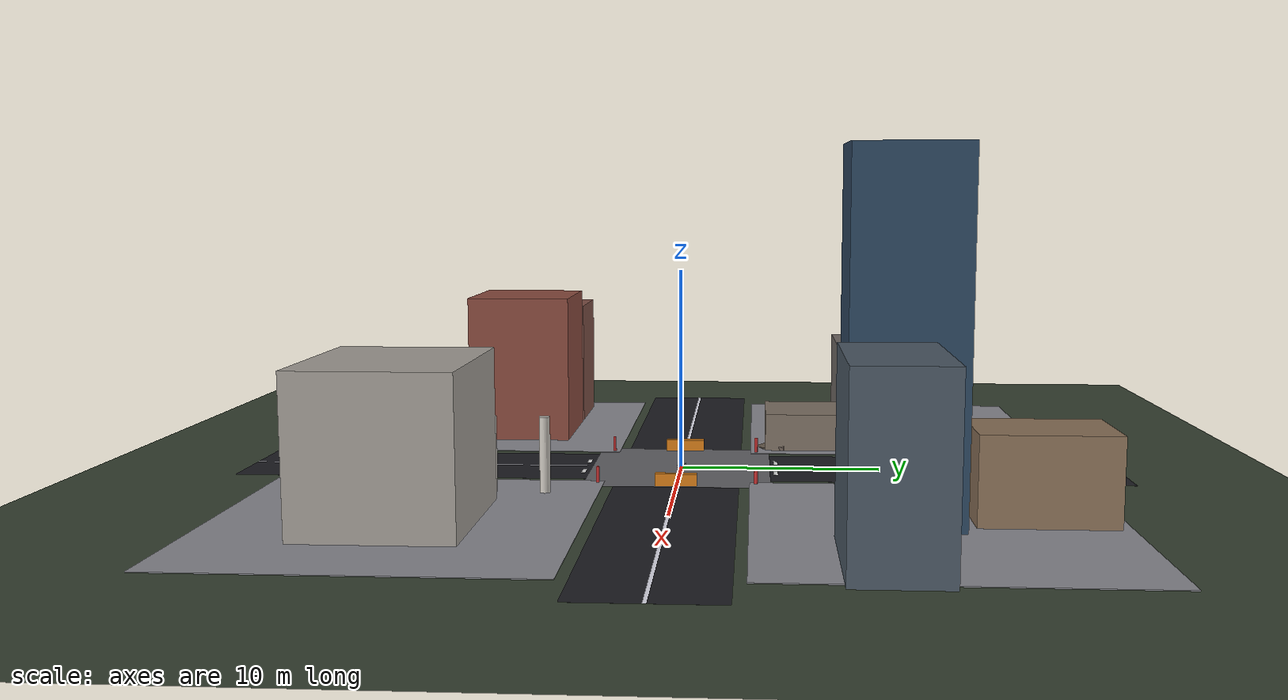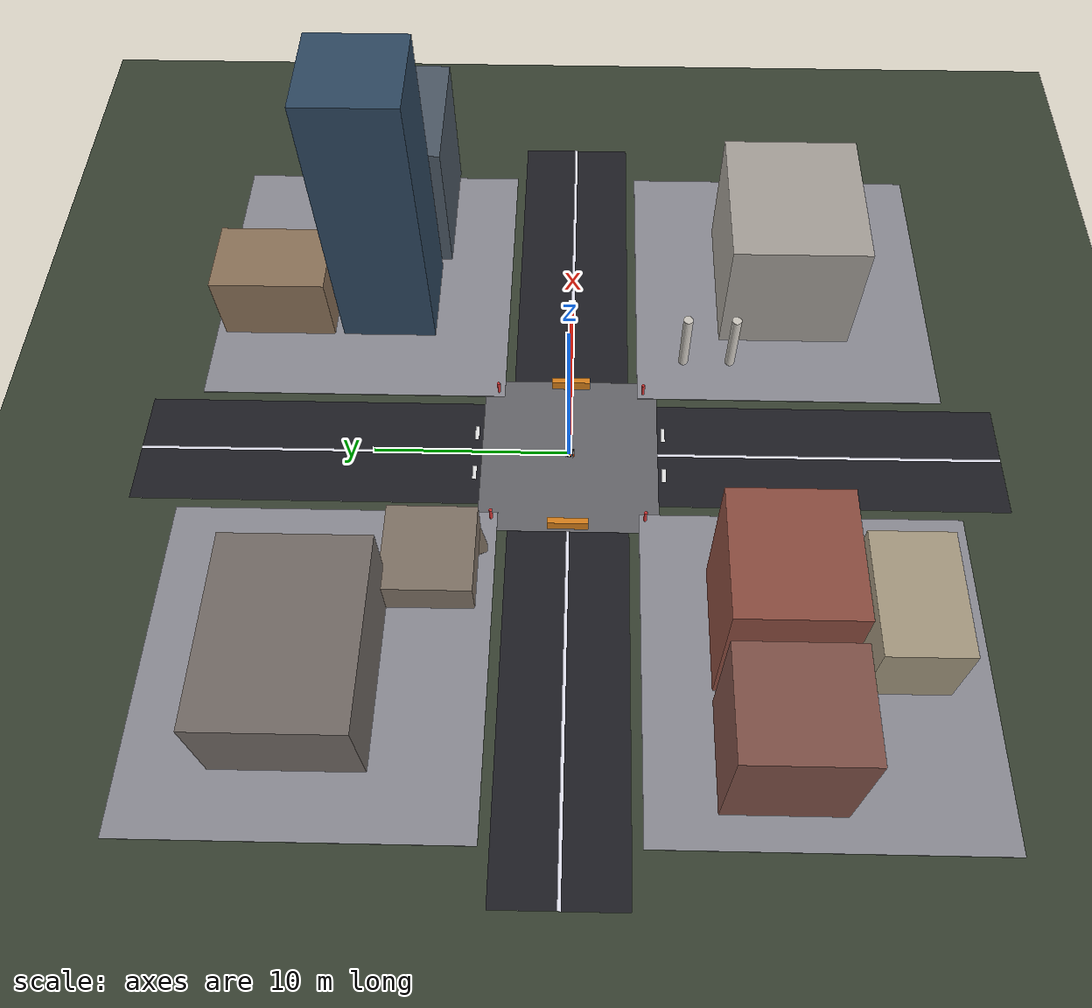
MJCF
<mujoco model="city_square_world">
    <option timestep="0.002" gravity="0 0 -9.81"/>

    <asset>
        <texture type="skybox" builtin="gradient" rgb1="0.4 0.6 0.8" rgb2="0.8 0.9 1.0" width="512" height="512"/>
    </asset>

    <default>
        <geom friction="2.0 0.5 0.5" solref="0.02 1" solimp="0.9 0.95 0.001"/>
    </default>

    <worldbody>
        <!-- Directional Daylight & Ambient Lighting -->
        <light name="sun" pos="10 10 20" dir="-0.4 -0.4 -1" castshadow="true" diffuse="0.85 0.85 0.9" ambient="0.35 0.35 0.4"/>
        <light name="fill_light" pos="-15 -15 15" dir="0.5 0.5 -1" diffuse="0.3 0.3 0.35"/>

        <!-- Base Terrain Plane (Grass / Outskirts) -->
        <geom name="ground_plane" type="plane" size="30 30 0.1" rgba="0.22 0.26 0.2 1" friction="3.0 0.5 0.5"/>

        <!-- ROAD NETWORK & PAVEMENT (Z = 0.001 to 0.005)               -->
        <!-- Main North-South Avenue -->
        <geom name="road_ns" type="box" size="3.0 22.0 0.001" pos="0 0 0.001" rgba="0.12 0.12 0.14 1"/>
        <!-- Main East-West Street -->
        <geom name="road_ew" type="box" size="22.0 3.0 0.001" pos="0 0 0.001" rgba="0.12 0.12 0.14 1"/>

        <!-- Central Plaza Ground Pad -->
        <geom name="central_plaza" type="box" size="4.5 4.5 0.003" pos="0 0 0.003" rgba="0.4 0.4 0.42 1"/>

        <!-- Road Markings (White Dashed Lines & Stop Lines) -->
        <geom name="line_n" type="box" size="0.08 12.0 0.002" pos="0 10.0 0.002" rgba="0.9 0.9 0.95 1"/>
        <geom name="line_s" type="box" size="0.08 12.0 0.002" pos="0 -10.0 0.002" rgba="0.9 0.9 0.95 1"/>
        <geom name="line_e" type="box" size="12.0 0.08 0.002" pos="10.0 0 0.002" rgba="0.9 0.9 0.95 1"/>
        <geom name="line_w" type="box" size="12.0 0.08 0.002" pos="-10.0 0 0.002" rgba="0.9 0.9 0.95 1"/>

        <!-- Crosswalk Stripes -->
        <geom name="cw_n_1" type="box" size="0.4 0.1 0.003" pos="1.2 4.8 0.003" rgba="0.9 0.9 0.9 1"/>
        <geom name="cw_n_2" type="box" size="0.4 0.1 0.003" pos="-1.2 4.8 0.003" rgba="0.9 0.9 0.9 1"/>
        <geom name="cw_s_1" type="box" size="0.4 0.1 0.003" pos="1.2 -4.8 0.003" rgba="0.9 0.9 0.9 1"/>
        <geom name="cw_s_2" type="box" size="0.4 0.1 0.003" pos="-1.2 -4.8 0.003" rgba="0.9 0.9 0.9 1"/>

        <!-- SIDEWALKS (Elevated Z=0.02 for Tracked Curb Climbing) -->
        <geom name="sw_ne" type="box" size="8.0 8.0 0.02" pos="11.5 11.5 0.02" rgba="0.55 0.55 0.58 1"/>
        <geom name="sw_nw" type="box" size="8.0 8.0 0.02" pos="-11.5 11.5 0.02" rgba="0.55 0.55 0.58 1"/>
        <geom name="sw_sw" type="box" size="8.0 8.0 0.02" pos="-11.5 -11.5 0.02" rgba="0.55 0.55 0.58 1"/>
        <geom name="sw_se" type="box" size="8.0 8.0 0.02" pos="11.5 -11.5 0.02" rgba="0.55 0.55 0.58 1"/>

        <!-- BUILDINGS & ARCHITECTURE                                  -->
        <!-- NORTH-EAST QUADRANT (Commercial & High-Rise Tower) -->
        <geom name="bld_ne_tower" type="box" size="2.5 2.5 8.0" pos="10.0 10.0 8.0" rgba="0.18 0.28 0.38 1"/>
        <geom name="bld_ne_office" type="box" size="3.5 2.0 4.0" pos="16.5 9.0 4.0" rgba="0.3 0.35 0.4 1"/>
        <geom name="bld_ne_store" type="box" size="2.0 3.0 2.0" pos="9.5 16.0 2.0" rgba="0.55 0.45 0.35 1"/>

        <!-- NORTH-WEST QUADRANT (Industrial Zone & USAR Rubble Site) -->
        <geom name="bld_nw_warehouse" type="box" size="4.5 3.5 2.5" pos="-12.0 12.0 2.5" rgba="0.45 0.42 0.4 1"/>
        <geom name="bld_nw_collapsed" type="box" size="2.2 2.2 1.0" pos="-6.5 6.5 1.0" rgba="0.5 0.45 0.4 1"/>

        <!-- Rubble / Debris Field (Urban Search & Rescue Mobility Test) -->
        <geom name="rubble_ramp" type="box" size="0.7 0.5 0.12" pos="-5.2 4.5 0.08" euler="15 0 25" rgba="0.4 0.35 0.3 1"/>
        <geom name="rubble_block1" type="box" size="0.25 0.2 0.15" pos="-4.5 5.2 0.15" euler="5 12 -30" rgba="0.48 0.42 0.38 1"/>
        <geom name="rubble_block2" type="box" size="0.3 0.25 0.18" pos="-5.5 5.8 0.18" euler="-10 15 40" rgba="0.35 0.32 0.3 1"/>

        <!-- SOUTH-WEST QUADRANT (Residential Blocks & Narrow Alleyways) -->
        <geom name="bld_sw_apt1" type="box" size="3.0 2.8 4.0" pos="-9.5 -9.5 4.0" rgba="0.55 0.3 0.25 1"/>
        <geom name="bld_sw_apt2" type="box" size="2.5 2.8 3.5" pos="-15.5 -9.5 3.5" rgba="0.5 0.32 0.28 1"/>
        <geom name="bld_sw_retail" type="box" size="3.0 2.0 2.2" pos="-9.5 -15.5 2.2" rgba="0.65 0.6 0.5 1"/>

        <!-- SOUTH-EAST QUADRANT (Civic Center & Plaza Wall) -->
        <geom name="bld_se_civic" type="box" size="4.0 3.5 3.5" pos="11.5 -11.5 3.5" rgba="0.65 0.63 0.6 1"/>
        <geom name="bld_se_column1" type="cylinder" size="0.25 1.8" pos="6.0 -6.0 1.8" rgba="0.8 0.78 0.75 1"/>
        <geom name="bld_se_column2" type="cylinder" size="0.25 1.8" pos="6.0 -8.5 1.8" rgba="0.8 0.78 0.75 1"/>

        <!-- INFRASTRUCTURE & STREET PROPS                             -->
        <!-- Plaza Perimeter Traffic Bollards -->
        <geom name="bollard_ne" type="cylinder" size="0.08 0.4" pos="3.8 3.8 0.4" rgba="0.8 0.2 0.2 1"/>
        <geom name="bollard_nw" type="cylinder" size="0.08 0.4" pos="-3.8 3.8 0.4" rgba="0.8 0.2 0.2 1"/>
        <geom name="bollard_sw" type="cylinder" size="0.08 0.4" pos="-3.8 -3.8 0.4" rgba="0.8 0.2 0.2 1"/>
        <geom name="bollard_se" type="cylinder" size="0.08 0.4" pos="3.8 -3.8 0.4" rgba="0.8 0.2 0.2 1"/>

        <!-- Concrete Jersey Barriers -->
        <geom name="barrier_east" type="box" size="0.15 1.0 0.3" pos="4.2 0 0.3" rgba="0.85 0.5 0.1 1"/>
        <geom name="barrier_west" type="box" size="0.15 1.0 0.3" pos="-4.2 0 0.3" rgba="0.85 0.5 0.1 1"/>
    </worldbody>

    <!-- Include robot definition -->
    <include file="robot.xml"/>
</mujoco>

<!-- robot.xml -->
<mujoco model="invertible_tracked_robot">
    <compiler angle="degree"/>

    <!-- Soft, balanced ambient light -->
    <visual>
        <headlight diffuse="0.4 0.4 0.4" ambient="0.5 0.5 0.5" specular="0.1 0.1 0.1"/>
    </visual>

    <default>
        <geom rgba="0.2 0.2 0.25 1" friction="1.5 0.3 0.1" solref="0.02 1" solimp="0.9 0.95 0.001"/>
        <joint type="hinge" damping="1.5" armature="0.10"/>
        <velocity kv="40" forcerange="-160 160"/>
    </default>

    <worldbody>
        <!-- Directional light without duplicate name attribute -->
        <light pos="1 1 4" dir="-0.2 -0.2 -1" diffuse="0.6 0.6 0.6" specular="0.2 0.2 0.2" castshadow="true"/>

        <body name="torso" pos="0 0 0.085">
            <freejoint name="root"/>

            <!-- Sensors & Camera Mount -->
            <camera name="front_cam" pos="0.22 0 0.0" xyaxes="0 -1 0 0 0 1"/>
            <site name="imu_site" pos="0 0 0"/>

            <!-- Lidar -->
            <site  name="lidar_0"    pos="0 0 0.05"   euler="0 90 0" />
            <site  name="lidar_45"   pos="0 0 0.05"   euler="0 90 45" />
            <site  name="lidar_90"   pos="0 0 0.05"   euler="0 90 90" />
            <site  name="lidar_135"  pos="0 0 0.05"   euler="0 90 135" />
            <site  name="lidar_180"  pos="0 0 0.05"   euler="0 90 180" />
            <site  name="lidar_225"  pos="0 0 0.05"   euler="0 90 225" />
            <site  name="lidar_270"  pos="0 0 0.05"   euler="0 90 270" />
            <site  name="lidar_315"  pos="0 0 0.05"   euler="0 90 315" />

            <!-- Camera Housing Visual Overlay -->
            <geom type="box" size="0.015 0.035 0.015" pos="0.21 0 0" rgba="0.05 0.05 0.08 1" contype="0" conaffinity="0"/>
            <geom type="cylinder" size="0.008 0.003" pos="0.225 0 0" euler="0 90 0" rgba="0.0 0.9 1.0 1" contype="0" conaffinity="0"/>

            <!-- Central Chassis Box (Dark Titanium Alloy) -->
            <geom name="chassis" type="box" size="0.22 0.12 0.035" rgba="0.12 0.14 0.18 1" mass="5.0" contype="0" conaffinity="0"/>

            <!-- Aesthetic Chassis Detailing (High-contrast Racing Stripe & Armor Panel) -->
            <geom type="box" size="0.20 0.115 0.002" pos="0 0 0.036" rgba="0.05 0.05 0.08 1" contype="0" conaffinity="0"/>
            <geom type="box" size="0.18 0.07 0.003" pos="0 0 0.038" rgba="1.0 0.3 0.0 1" contype="0" conaffinity="0"/>
            <geom type="box" size="0.20 0.115 0.002" pos="0 0 -0.036" rgba="0.05 0.05 0.08 1" contype="0" conaffinity="0"/>
            <geom type="box" size="0.18 0.07 0.003" pos="0 0 -0.038" rgba="1.0 0.3 0.0 1" contype="0" conaffinity="0"/>

            <!-- Structural Crossbars (Silver Steel) -->
            <geom type="cylinder" size="0.008 0.12" pos="0.10 0 0" euler="90 0 0" rgba="0.85 0.88 0.92 1" contype="0" conaffinity="0"/>
            <geom type="cylinder" size="0.008 0.12" pos="-0.10 0 0" euler="90 0 0" rgba="0.85 0.88 0.92 1" contype="0" conaffinity="0"/>

            <!-- Glowing Cyan LED Lights -->
            <geom type="sphere" size="0.008" pos="0.21 0.09 0.03" rgba="0.0 1.0 0.8 1" contype="0" conaffinity="0"/>
            <geom type="sphere" size="0.008" pos="0.21 -0.09 0.03" rgba="0.0 1.0 0.8 1" contype="0" conaffinity="0"/>

            <!-- LEFT TRACK MODULE (+Y) -->
            <geom name="left_side_plate" type="box" size="0.21 0.005 0.055" pos="0 0.21 0" rgba="0.9 0.9 0.92 1" mass="0.4" contype="0" conaffinity="0"/>
            <geom name="left_inner_plate" type="box" size="0.21 0.005 0.055" pos="0 0.15 0" rgba="0.2 0.22 0.25 1" mass="0.4" contype="0" conaffinity="0"/>
            <geom name="left_tread_top" type="box" size="0.18 0.032 0.004" pos="0 0.18 0.083" rgba="0.08 0.08 0.08 1" contype="0" conaffinity="0"/>
            <geom name="left_tread_bottom" type="box" size="0.18 0.032 0.004" pos="0 0.18 -0.083" rgba="0.08 0.08 0.08 1" contype="0" conaffinity="0"/>
            <geom name="left_tread_front" type="cylinder" size="0.085 0.032" pos="0.16 0.18 0" euler="90 0 0" rgba="0.08 0.08 0.08 1" contype="0" conaffinity="0"/>
            <geom name="left_tread_rear" type="cylinder" size="0.085 0.032" pos="-0.16 0.18 0" euler="90 0 0" rgba="0.08 0.08 0.08 1" contype="0" conaffinity="0"/>

            <!-- Left Side Trim -->
            <geom type="box" size="0.20 0.002 0.010" pos="0 0.216 0" rgba="1.0 0.3 0.0 1" contype="0" conaffinity="0"/>

            <body name="left_front_wheel" pos="0.16 0.18 0">
                <joint name="left_front_joint" axis="0 1 0"/>
                <geom type="cylinder" size="0.085" fromto="0 -0.015 0  0 0.015 0" rgba="0.15 0.16 0.18 1" mass="0.8"/>
                <!-- Outer Wheel Hub Cap -->
                <geom type="cylinder" size="0.06 0.016" euler="90 0 0" rgba="0.9 0.9 0.92 1" contype="0" conaffinity="0"/>
                <geom type="cylinder" size="0.025 0.017" euler="90 0 0" rgba="1.0 0.3 0.0 1" contype="0" conaffinity="0"/>
            </body>

            <body name="left_rear_wheel" pos="-0.16 0.18 0">
                <joint name="left_rear_joint" axis="0 1 0"/>
                <geom type="cylinder" size="0.085" fromto="0 -0.015 0  0 0.015 0" rgba="0.15 0.16 0.18 1" mass="0.8"/>
                <!-- Outer Wheel Hub Cap -->
                <geom type="cylinder" size="0.06 0.016" euler="90 0 0" rgba="0.9 0.9 0.92 1" contype="0" conaffinity="0"/>
                <geom type="cylinder" size="0.025 0.017" euler="90 0 0" rgba="1.0 0.3 0.0 1" contype="0" conaffinity="0"/>
            </body>

            <!-- RIGHT TRACK MODULE (-Y) -->
            <geom name="right_side_plate" type="box" size="0.21 0.005 0.055" pos="0 -0.21 0" rgba="0.9 0.9 0.92 1" mass="0.4" contype="0" conaffinity="0"/>
            <geom name="right_inner_plate" type="box" size="0.21 0.005 0.055" pos="0 -0.15 0" rgba="0.2 0.22 0.25 1" mass="0.4" contype="0" conaffinity="0"/>
            <geom name="right_tread_top" type="box" size="0.18 0.032 0.004" pos="0 -0.18 0.083" rgba="0.08 0.08 0.08 1" contype="0" conaffinity="0"/>
            <geom name="right_tread_bottom" type="box" size="0.18 0.032 0.004" pos="0 -0.18 -0.083" rgba="0.08 0.08 0.08 1" contype="0" conaffinity="0"/>
            <geom name="right_tread_front" type="cylinder" size="0.085 0.032" pos="0.16 -0.18 0" euler="90 0 0" rgba="0.08 0.08 0.08 1" contype="0" conaffinity="0"/>
            <geom name="right_tread_rear" type="cylinder" size="0.085 0.032" pos="-0.16 -0.18 0" euler="90 0 0" rgba="0.08 0.08 0.08 1" contype="0" conaffinity="0"/>

            <!-- Right Side Trim -->
            <geom type="box" size="0.20 0.002 0.010" pos="0 -0.216 0" rgba="1.0 0.3 0.0 1" contype="0" conaffinity="0"/>

            <body name="right_front_wheel" pos="0.16 -0.18 0">
                <joint name="right_front_joint" axis="0 1 0"/>
                <geom type="cylinder" size="0.085" fromto="0 -0.015 0  0 0.015 0" rgba="0.15 0.16 0.18 1" mass="0.8"/>
                <!-- Outer Wheel Hub Cap -->
                <geom type="cylinder" size="0.06 0.016" euler="90 0 0" rgba="0.9 0.9 0.92 1" contype="0" conaffinity="0"/>
                <geom type="cylinder" size="0.025 0.017" euler="90 0 0" rgba="1.0 0.3 0.0 1" contype="0" conaffinity="0"/>
            </body>

            <body name="right_rear_wheel" pos="-0.16 -0.18 0">
                <joint name="right_rear_joint" axis="0 1 0"/>
                <geom type="cylinder" size="0.085" fromto="0 -0.015 0  0 0.015 0" rgba="0.15 0.16 0.18 1" mass="0.8"/>
                <!-- Outer Wheel Hub Cap -->
                <geom type="cylinder" size="0.06 0.016" euler="90 0 0" rgba="0.9 0.9 0.92 1" contype="0" conaffinity="0"/>
                <geom type="cylinder" size="0.025 0.017" euler="90 0 0" rgba="1.0 0.3 0.0 1" contype="0" conaffinity="0"/>
            </body>
        </body>
    </worldbody>

    <actuator>
        <velocity joint="left_front_joint" name="left_drive_f"/>
        <velocity joint="left_rear_joint" name="left_drive_r"/>
        <velocity joint="right_front_joint" name="right_drive_f"/>
        <velocity joint="right_rear_joint" name="right_drive_r"/>
    </actuator>

    <sensor>
        <accelerometer name="accel" site="imu_site"/>
        <gyro name="gyro" site="imu_site"/>
        <magnetometer name="mag" site="imu_site"/>

    </sensor>
</mujoco>
